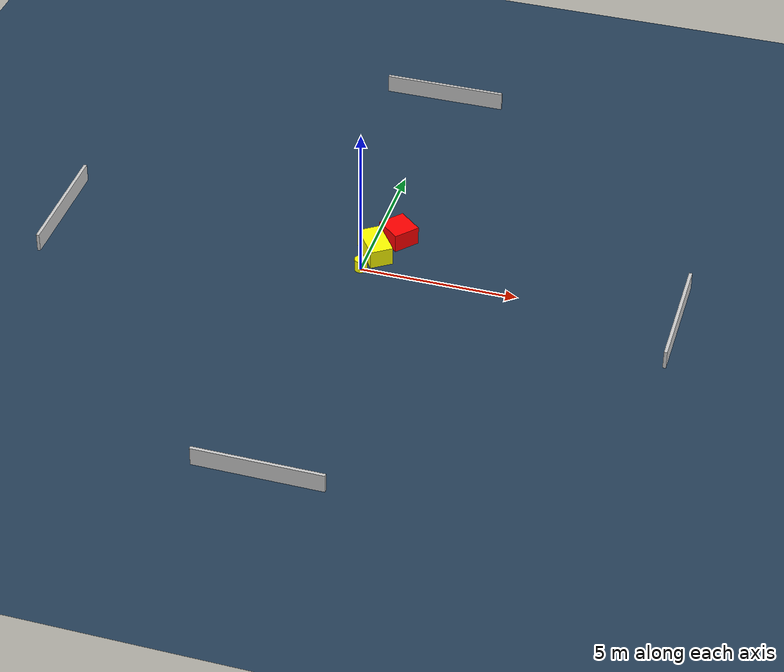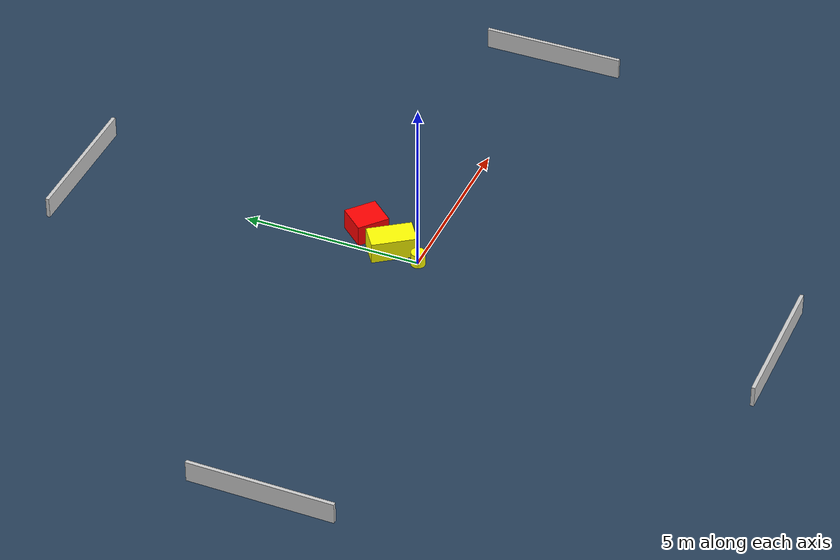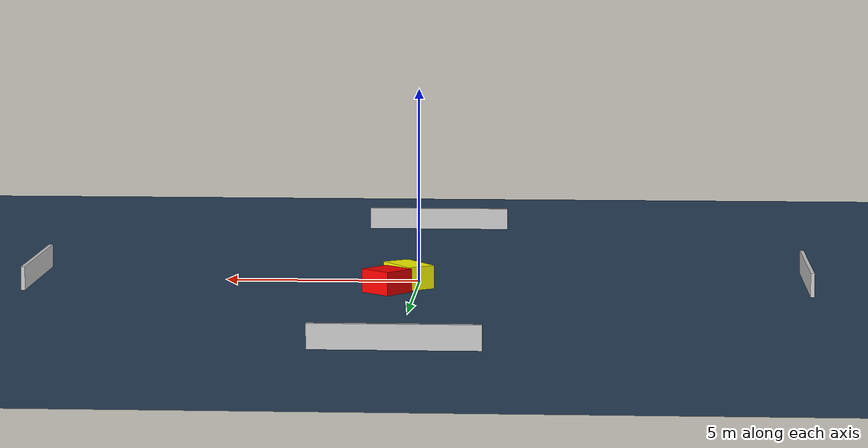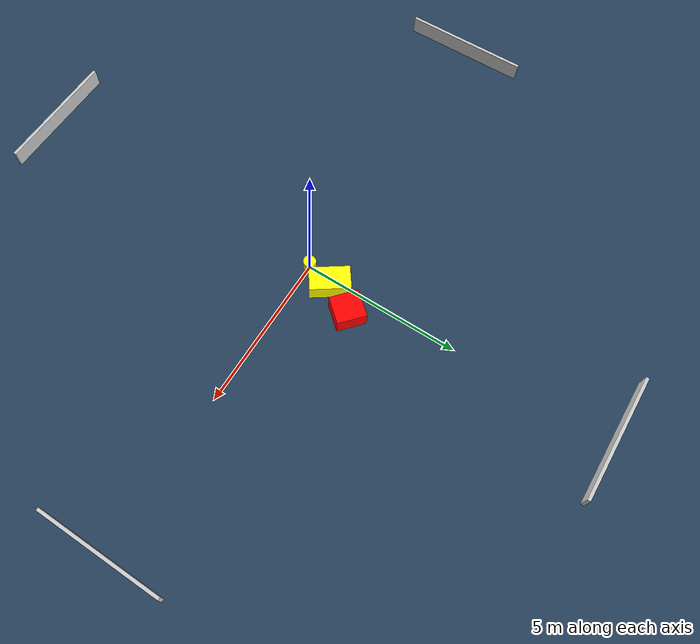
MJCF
<?xml version="1.0" ?>
<mujoco model="generated_environment">
  <option timestep="0.01" integrator="RK4" cone="elliptic"/>
  <default>
    <geom density="1"/>
  </default>
  <asset>
    <texture builtin="gradient" height="3072" name="skybox" rgb1="0.3 0.5 0.7" rgb2="0 0 0" type="skybox" width="512"/>
    <texture builtin="checker" height="300" name="groundplane" rgb1="0.2 0.3 0.4" rgb2="0.1 0.2 0.3" type="2d" width="300"/>
    <material name="groundplane" reflectance="0.2" texrepeat="5 5" texture="groundplane"/>
  </asset>
  <worldbody>
    <light dir="0 0 -1" directional="true" pos="0 0 1.5"/>
    <geom condim="3" friction="0.5 0.005 0.001" material="groundplane" name="floor" pos="0 0 0" size="0 0 0.05" type="plane"/>
    <body name="walls">
      <geom name="wall_1" condim="4" pos="-10.0 0.0 0.3" rgba="0.800000011920929 0.800000011920929 0.800000011920929 1.0" size="0.05 2.0 0.3" type="box"/>
      <geom name="wall_2" condim="4" pos="10.0 0.0 0.3" rgba="0.800000011920929 0.800000011920929 0.800000011920929 1.0" size="0.05 2.0 0.3" type="box"/>
      <geom name="wall_3" condim="4" pos="0.0 -10.0 0.3" rgba="0.800000011920929 0.800000011920929 0.800000011920929 1.0" size="2.0 0.05 0.3" type="box"/>
      <geom name="wall_4" condim="4" pos="0.0 10.0 0.3" rgba="0.800000011920929 0.800000011920929 0.800000011920929 1.0" size="2.0 0.05 0.3" type="box"/>
    </body>
    <body name="robot">
      <joint name="joint_x" type="slide" pos="0 0 0" axis="1 0 0"/>
      <joint name="joint_y" type="slide" pos="0 0 0" axis="0 1 0"/>
      <geom name="robot" type="cylinder" pos="0.0 0.0 0.2" size="0.2 0.2 0.0" mass="5.0" friction="1.0 0.005 0.0001" condim="4" rgba="1.0 1.0 0.0 1.0"/>
    </body>
    <body name="obstacle_1_movable">
      <geom name="obstacle_1_movable" condim="4" pos="0.21906587656231602 0.8569002645339878 0.3" euler="0 0 125.16562009401605" friction="0.0 0.005 0.001" rgba="1.0 1.0 0.0 1.0" size="0.6281076961063612 0.3688468663874318 0.3" type="box" mass="0.1"/>
      <joint type="free"/>
    </body>
    <body name="obstacle_2_static">
      <geom name="obstacle_2_static" condim="4" pos="0.7217178066064145 1.7964192577804743 0.3" euler="0 0 319.0220799344652" friction="0.0 0.005 0.001" rgba="1.0 0.0 0.0 1.0" size="0.4581698433179013 0.43315095535650106 0.3" type="box"/>
    </body>
  </worldbody>
  <actuator>
    <motor name="actuator_x" joint="joint_x" gear="1" ctrlrange="-1 1"/>
    <motor name="actuator_y" joint="joint_y" gear="1" ctrlrange="-1 1"/>
  </actuator>
</mujoco>
